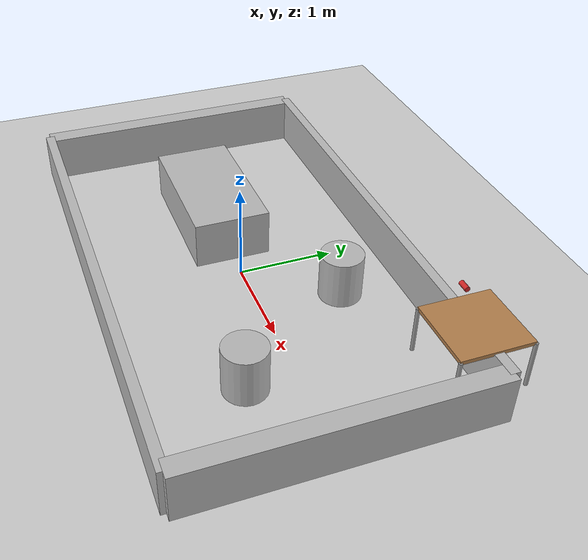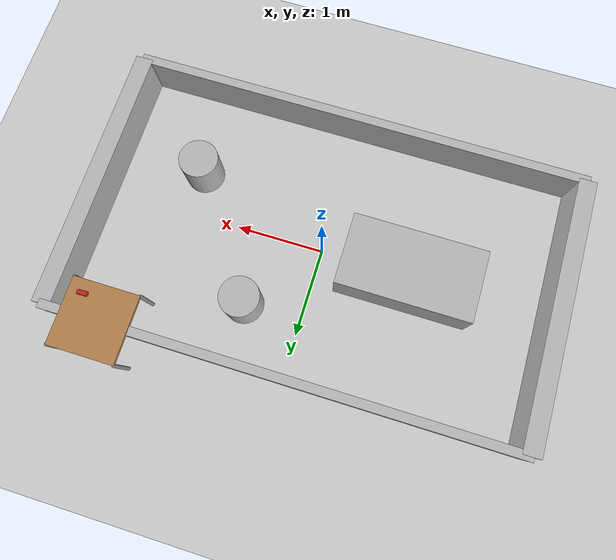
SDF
<?xml version="1.0" ?>
<sdf version="1.4">
  <world name="default">
    <physics type="ode">
      <gravity>0 0 -9.81</gravity>
      <ode>
        <solver>
          <type>quick</type>
          <iters>20</iters>
          <sor>1.0</sor>
        </solver>
        <constraints>
          <cfm>0.0</cfm>
          <erp>0.2</erp>
          <contact_max_correcting_vel>100.0</contact_max_correcting_vel>
          <contact_surface_layer>0.0</contact_surface_layer>
        </constraints>
      </ode>
      <real_time_update_rate>1000</real_time_update_rate>
      <max_step_size>0.001</max_step_size>
    </physics>

    <!-- A global light source -->
    <include>
      <uri>model://sun</uri>
    </include>

    <!-- A ground plane -->
    <include>
      <uri>model://ground_plane</uri>
    </include>

    <model name="wall_1_model">
      <pose>-0 -1.5 0.25 0 0 0</pose>
      <static>true</static>
      <link name="wall_1_body">
        <inertial>
          <mass>1.0</mass>
          <inertia>
            <ixx>1.0</ixx>
            <ixy>0.0</ixy>
            <ixz>0.0</ixz>
            <iyy>1.0</iyy>
            <iyz>0.0</iyz>
            <izz>1.0</izz>
          </inertia>
        </inertial>
        <collision name="collision">
          <geometry>
            <box>
              <size>5.25 0.10 0.5</size>
            </box>
          </geometry>
        </collision>
        <visual name="visual">
          <geometry>
            <box>
              <size>5.25 0.10 0.5</size>
            </box>
          </geometry>
        </visual>
      </link>
    </model>
    <model name="wall_2_model">
      <pose>0 1.5 0.25 0 0 0</pose>
      <static>true</static>
      <link name="wall_2_body">
        <inertial>
          <mass>1.0</mass>
          <inertia>
            <ixx>1.0</ixx>
            <ixy>0.0</ixy>
            <ixz>0.0</ixz>
            <iyy>1.0</iyy>
            <iyz>0.0</iyz>
            <izz>1.0</izz>
          </inertia>
        </inertial>
        <collision name="collision">
          <geometry>
            <box>
              <size>5.25 0.1 0.5</size>
            </box>
          </geometry>
        </collision>
        <visual name="visual">
          <geometry>
            <box>
              <size>5.25 0.1 0.5</size>
            </box>
          </geometry>
        </visual>
      </link>
    </model>
    <model name="wall_3_model">
      <pose> 2.6 0 0.25 0 0 1.57</pose>
      <static>true</static>
      <link name="wall_3_body">
        <inertial>
          <mass>1.0</mass>
          <inertia>
            <ixx>1.0</ixx>
            <ixy>0.0</ixy>
            <ixz>0.0</ixz>
            <iyy>1.0</iyy>
            <iyz>0.0</iyz>
            <izz>1.0</izz>
          </inertia>
        </inertial>
        <collision name="collision">
          <geometry>
            <box>
              <size>3.0 0.2 0.5</size>
            </box>
          </geometry>
        </collision>
        <visual name="visual">
          <geometry>
            <box>
              <size>3.0 0.2 0.5</size>
            </box>
          </geometry>
        </visual>
      </link>
    </model>
    <model name="wall_4_model">
      <pose>-2.6 0 0.25 0 0 1.57</pose>
      <static>true</static>
      <link name="wall_4_body">
        <inertial>
          <mass>1.0</mass>
          <inertia>
            <ixx>1.0</ixx>
            <ixy>0.0</ixy>
            <ixz>0.0</ixz>
            <iyy>1.0</iyy>
            <iyz>0.0</iyz>
            <izz>1.0</izz>
          </inertia>
        </inertial>
        <collision name="collision">
          <geometry>
            <box>
              <size>3.0 0.2 0.5</size>
            </box>
          </geometry>
        </collision>
        <visual name="visual">
          <geometry>
            <box>
              <size>3.0 0.2 0.5</size>
            </box>
          </geometry>
        </visual>
      </link>
    </model>
    <model name="cylinder_1">
      <pose>0.65 0.83 0.25 0 0 0</pose>
        <static>true</static>
        <link name='cylinder_1_body'>
          <collision name="collision">
          <geometry>
            <cylinder>
              <length>0.5</length>
              <radius>0.22</radius>
            </cylinder>
          </geometry>
        </collision>
        <visual name="visual">
          <geometry>
            <cylinder>
              <length>0.5</length>
              <radius>0.22</radius>
            </cylinder>
          </geometry>
        </visual>
      </link>
    </model>
    <model name="cylinder_2">
      <pose>1.580 -0.5 0.25 0 0 0</pose>
        <static>true</static>
        <link name='cylinder_2_body'>
          <collision name="collision">
          <geometry>
            <cylinder>
              <length>0.5</length>
              <radius>0.22</radius>
            </cylinder>
          </geometry>
        </collision>
        <visual name="visual">
          <geometry>
            <cylinder>
              <length>0.5</length>
              <radius>0.22</radius>
            </cylinder>
          </geometry>
        </visual>
      </link>
    </model>
    <model name="stairs_model">
      <pose>-1.0 0 0.25 0 0 0</pose>
      <static>true</static>
      <link name="stairs_body">
        <inertial>
          <mass>1.0</mass>
          <inertia>
            <ixx>1.0</ixx>
            <ixy>0.0</ixy>
            <ixz>0.0</ixz>
            <iyy>1.0</iyy>
            <iyz>0.0</iyz>
            <izz>1.0</izz>
          </inertia>
        </inertial>
        <collision name="collision">
          <geometry>
            <box>
              <size>1.45 0.68 0.5</size>
            </box>
          </geometry>
        </collision>
        <visual name="visual">
          <geometry>
            <box>
              <size>1.5 0.8 0.5</size>
            </box>
          </geometry>
        </visual>
      </link>
    </model>
    <include>
      <uri>model://macrolink_small_table</uri>
      <pose>2.0 1.5 0 0 0 0</pose>
    </include>
    <model name="grasp_object">
      <pose>2.0 1.3 1.0 1.57 0 1.57</pose>
        <link name='grasp_object'>
          <collision name="collision">
          <geometry>
            <cylinder>
              <length>0.1</length>
              <radius>0.025</radius>
            </cylinder>
          </geometry>
        </collision>
        <visual name="visual">
          <geometry>
            <cylinder>
              <length>0.1</length>
              <radius>0.025</radius>
            </cylinder>
          </geometry>
          <material>
            <script>
              <uri>file://media/materials/scripts/gazebo.material</uri>
              <name>Gazebo/Red</name>
            </script>
          </material>
        </visual>
      </link>
    </model>
  </world>
</sdf>

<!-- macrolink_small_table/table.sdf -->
<sdf version='1.3'>
<model name='table'>
      <static>1</static>
      <link name='link'>
        <collision name='surface'>
          <pose>0.000000 0.000000 0.50000 0.000000 0.000000 0.000000</pose>
          <geometry>
            <box>
              <size>0.750000 0.750000 0.040000</size>
            </box>
          </geometry>
          <surface>
            <bounce/>
            <friction>
              <ode/>
            </friction>
            <contact>
              <ode/>
            </contact>
          </surface>
        </collision>
        <visual name='visual1'>
          <pose>0.000000 0.000000 0.500000 0.000000 0.000000 0.000000</pose>
          <geometry>
            <box>
              <size>0.750000 0.750000 0.040000</size>
            </box>
          </geometry>
          <material>
            <script>
              <uri>file://media/materials/scripts/gazebo.material</uri>
              <name>Gazebo/Wood</name>
            </script>
          </material>
        </visual>
        <collision name='front_left_leg'>
          <pose>0.370000 0.370000 0.2500000 0.000000 0.000000 0.000000</pose>
          <geometry>
            <cylinder>
              <radius>0.020000</radius>
              <length>0.500000</length>
            </cylinder>
          </geometry>
          <surface>
            <bounce/>
            <friction>
              <ode/>
            </friction>
            <contact>
              <ode/>
            </contact>
          </surface>
        </collision>
        <visual name='front_left_leg'>
          <pose>0.370000 0.370000 0.2500000 0.000000 0.000000 0.000000</pose>
          <geometry>
            <cylinder>
              <radius>0.020000</radius>
              <length>0.500000</length>
            </cylinder>
          </geometry>
          <material>
            <script>
              <uri>file://media/materials/scripts/gazebo.material</uri>
              <name>Gazebo/Grey</name>
            </script>
          </material>
        </visual>
        <collision name='front_right_leg'>
          <pose>0.370000 -0.370000 0.2500000 0.000000 0.000000 0.000000</pose>
          <geometry>
            <cylinder>
              <radius>0.020000</radius>
              <length>0.5000000</length>
            </cylinder>
          </geometry>
          <surface>
            <bounce/>
            <friction>
              <ode/>
            </friction>
            <contact>
              <ode/>
            </contact>
          </surface>
        </collision>
        <visual name='front_right_leg'>
          <pose>0.370000 -0.370000 0.2500000 0.000000 0.000000 0.000000</pose>
          <geometry>
            <cylinder>
              <radius>0.020000</radius>
              <length>0.500000</length>
            </cylinder>
          </geometry>
          <material>
            <script>
              <uri>file://media/materials/scripts/gazebo.material</uri>
              <name>Gazebo/Grey</name>
            </script>
          </material>
        </visual>
        <collision name='back_right_leg'>
          <pose>-0.370000 -0.370000 0.2500000 0.000000 0.000000 0.000000</pose>
          <geometry>
            <cylinder>
              <radius>0.020000</radius>
              <length>0.5000000</length>
            </cylinder>
          </geometry>
          <surface>
            <bounce/>
            <friction>
              <ode/>
            </friction>
            <contact>
              <ode/>
            </contact>
          </surface>
        </collision>
        <visual name='back_right_leg'>
          <pose>-0.370000 -0.370000 0.2500000 0.000000 0.000000 0.000000</pose>
          <geometry>
            <cylinder>
              <radius>0.020000</radius>
              <length>0.500000</length>
            </cylinder>
          </geometry>
          <material>
            <script>
              <uri>file://media/materials/scripts/gazebo.material</uri>
              <name>Gazebo/Grey</name>
            </script>
          </material>
        </visual>
        <collision name='back_left_leg'>
          <pose>-0.370000 0.370000 0.2500000 0.000000 0.000000 0.000000</pose>
          <geometry>
            <cylinder>
              <radius>0.020000</radius>
              <length>0.500000</length>
            </cylinder>
          </geometry>
          <surface>
            <bounce/>
            <friction>
              <ode/>
            </friction>
            <contact>
              <ode/>
            </contact>
          </surface>
        </collision>
        <visual name='back_left_leg'>
          <pose>-0.370000 0.370000 0.2500000 0.000000 0.000000 0.000000</pose>
          <geometry>
            <cylinder>
              <radius>0.020000</radius>
              <length>0.500000</length>
            </cylinder>
          </geometry>
          <material>
            <script>
              <uri>file://media/materials/scripts/gazebo.material</uri>
              <name>Gazebo/Grey</name>
            </script>
          </material>
        </visual>
        <velocity_decay>
          <linear>0.000000</linear>
          <angular>0.000000</angular>
        </velocity_decay>
        <self_collide>0</self_collide>
        <kinematic>0</kinematic>
        <gravity>1</gravity>
      </link>
    </model>
</sdf>
